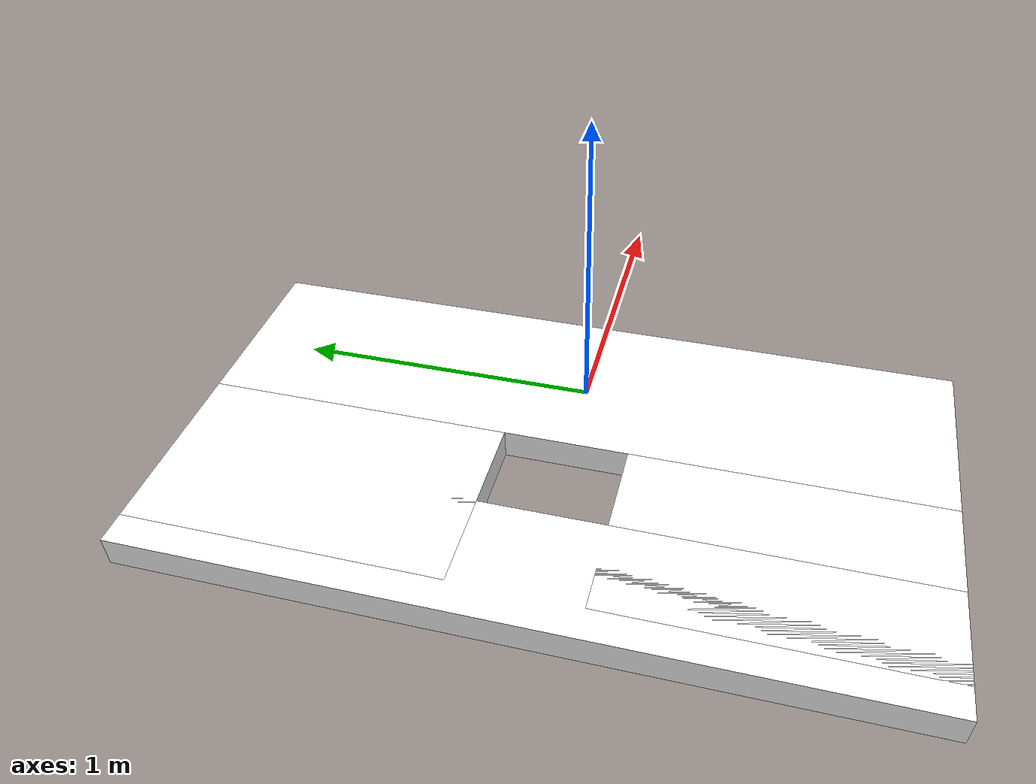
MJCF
<mujoco model="table">
    <compiler angle="radian" autolimits="true" />
    <option impratio="10" />
    <default>
        <default class="visual">
            <geom type="mesh" contype="0" conaffinity="0" group="2" />
        </default>
        <default class="collision">
            <geom type="mesh" group="3" />
        </default>
    </default>

    <asset>
        <material name="table" rgba="1 1 1 1" reflectance="0" specular="0.0"
            shininess="0" />
    </asset>
    <worldbody>
        <body name="table">
            <geom pos="0 0 0" size="0.3 1.2 0.05" class="visual" type="box" material="table" />
            <geom pos="-0.8 0 0" size="0.2 1.2 0.05" class="visual" type="box" material="table" />
            <geom pos="-0.6 0.7 0" size="0.3 0.5 0.05" class="visual" type="box" material="table" />
            <geom pos="-0.6 -0.7 0" size="0.3 0.5 0.05" class="visual" type="box" material="table" />

            <geom pos="0 0 0" size="0.3 1.2 0.05" class="collision" type="box" />
            <geom pos="-0.8 0 0" size="0.2 1.2 0.05" class="collision" type="box" />
            <geom pos="-0.6 0.7 0" size="0.3 0.5 0.05" class="collision" type="box" />
            <geom pos="-0.6 -0.7 0" size="0.3 0.5 0.05" class="collision" type="box" />
        </body>
    </worldbody>
</mujoco>
